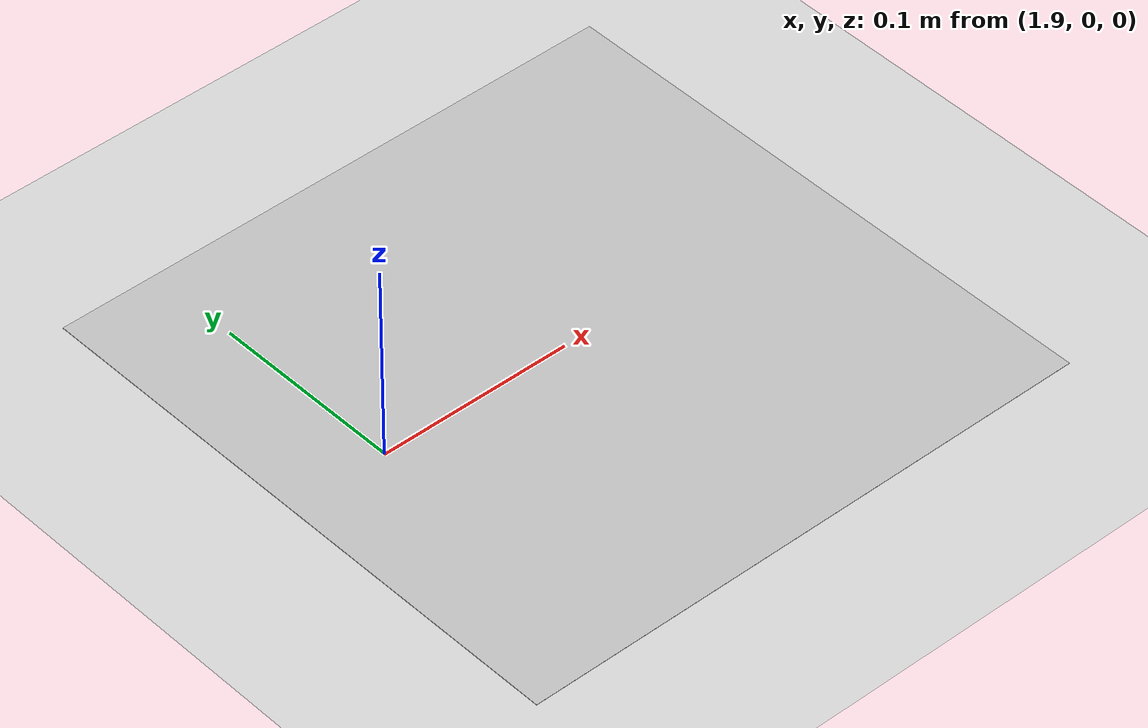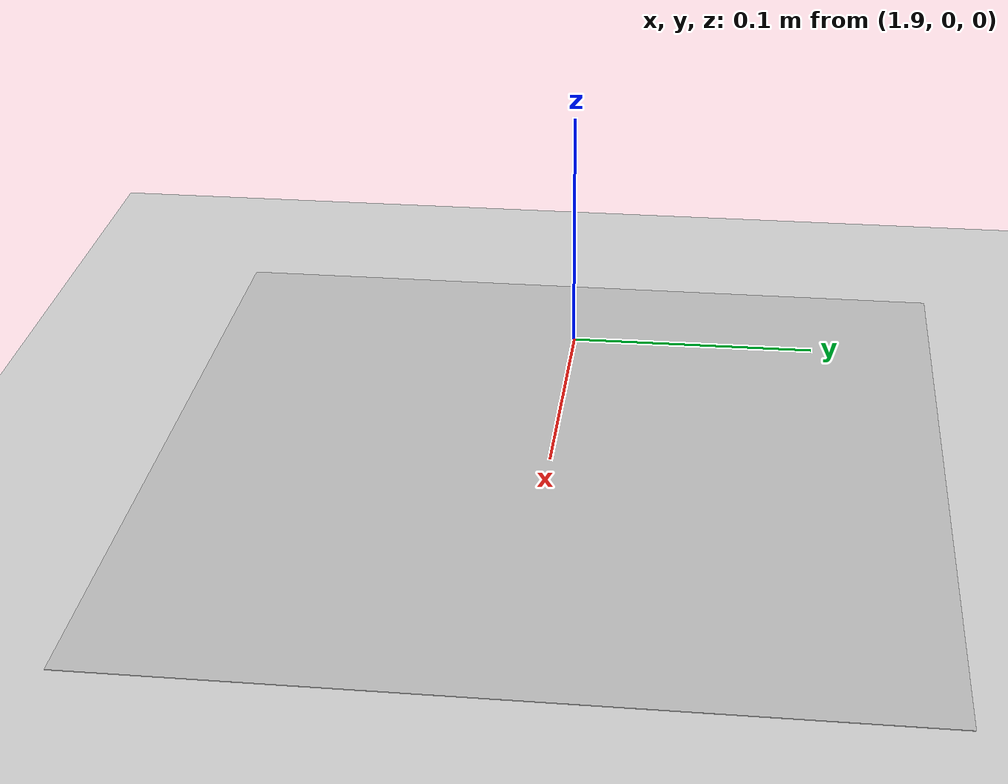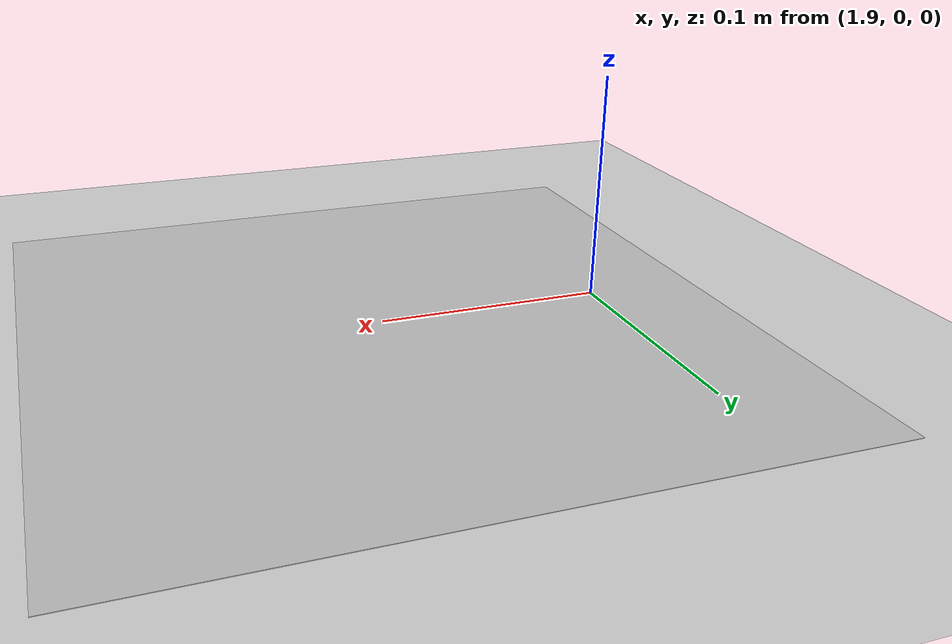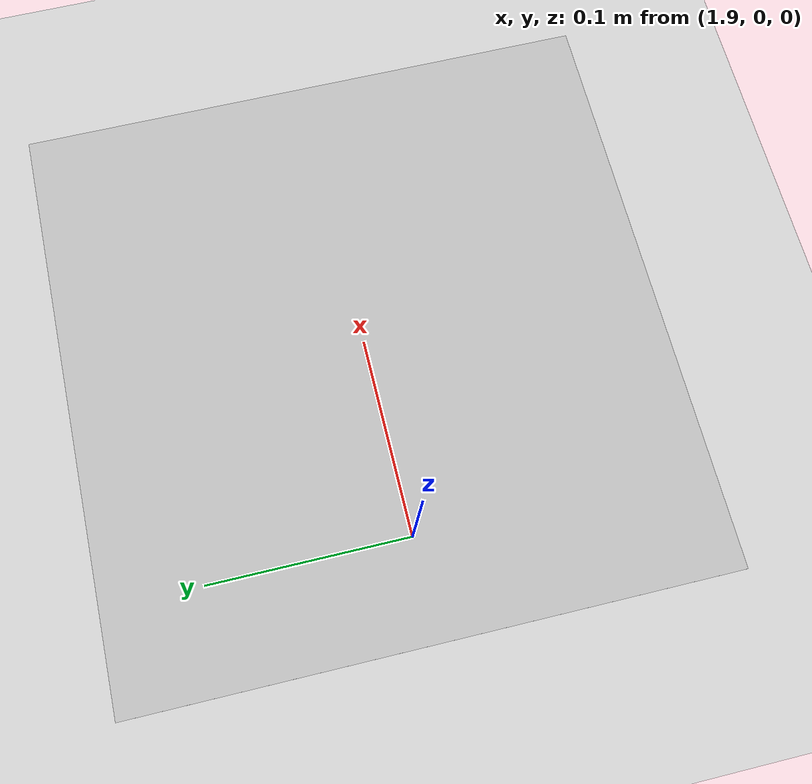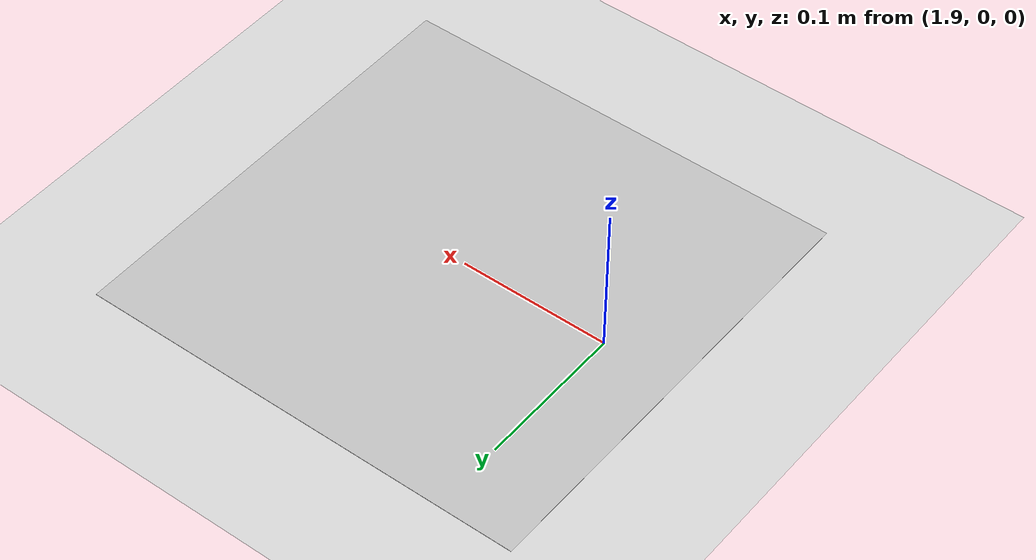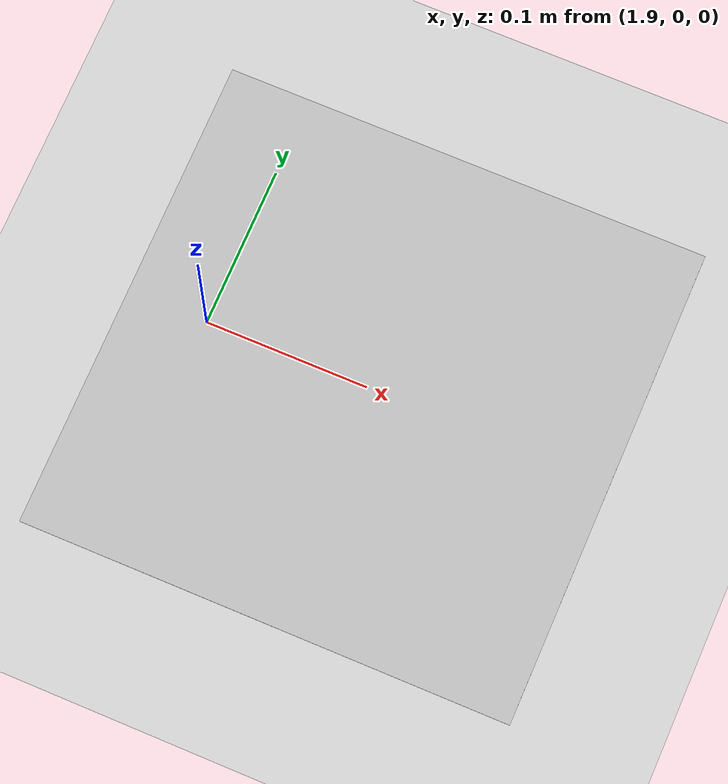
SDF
<sdf version='1.7'>
  <world name='april'>

    <light name='sun' type='directional'>
      <cast_shadows>0</cast_shadows>
      <pose>0 0 10 0 -0 0</pose>
      <diffuse>0.8 0.8 0.8 1</diffuse>
      <specular>0.2 0.2 0.2 1</specular>
      <attenuation>
        <range>1000</range>
        <constant>0.9</constant>
        <linear>0.01</linear>
        <quadratic>0.001</quadratic>
      </attenuation>
      <direction>-0.5 0.1 -0.9</direction>
      <spot>
        <inner_angle>0</inner_angle>
        <outer_angle>0</outer_angle>
        <falloff>0</falloff>
      </spot>
    </light>

    <model name='ground_plane'>
      <static>1</static>
      <link name='link'>

        <collision name='collision'>
          <geometry>
            <plane>
              <normal>0 0 1</normal>
              <size>100 100</size>
            </plane>
          </geometry>

          <surface>
            <contact>
              <collide_bitmask>65535</collide_bitmask>
              <ode/>
            </contact>

            <friction>
              <ode>
                <mu>1.2</mu>
                <mu2>1.2</mu2>
              </ode>

              <torsional>
                <ode>
                  <coefficient>0.5</coefficient>
                  <use_patch_radius>1</use_patch_radius>
                  <patch_radius>0.02</patch_radius>
                  <surface_radius>0.0</surface_radius>
                </ode>
              </torsional>
            </friction>

            <bounce/>
          </surface>

          <max_contacts>50</max_contacts>
        </collision>

        <visual name='visual'>
          <cast_shadows>0</cast_shadows>
          <geometry>
            <plane>
              <normal>0 0 1</normal>
              <size>100 100</size>
            </plane>
          </geometry>
          <material>
            <script>
              <uri>file://media/materials/scripts/gazebo.material</uri>
              <name>Gazebo/Grey</name>
            </script>
          </material>
        </visual>

        <self_collide>0</self_collide>
        <enable_wind>0</enable_wind>
        <kinematic>0</kinematic>
      </link>
    </model>

    <gravity>0 0 -9.8</gravity>
    <magnetic_field>6e-06 2.3e-05 -4.2e-05</magnetic_field>
    <atmosphere type='adiabatic'/>

    <physics type='ode'>
      <max_step_size>0.002</max_step_size>
      <real_time_factor>1</real_time_factor>
      <real_time_update_rate>500</real_time_update_rate>
    </physics>

    <scene>
      <ambient>0.5 0.5 0.5 1</ambient>
      <background>0.7 0.7 0.7 1</background>
      <shadows>0</shadows>
    </scene>

    <audio>
      <device>default</device>
    </audio>

    <wind/>

    <spherical_coordinates>
      <surface_model>EARTH_WGS84</surface_model>
      <latitude_deg>0</latitude_deg>
      <longitude_deg>0</longitude_deg>
      <elevation>0</elevation>
      <heading_deg>0</heading_deg>
    </spherical_coordinates>

    <model name="apriltag_0">
      <static>true</static>
      <pose>2 0 0 0 0 0</pose>
      <link name="link">
        <visual name="visual">
          <cast_shadows>0</cast_shadows>
          <geometry>
            <plane>
              <normal>0 0 1</normal>
              <size>0.3 0.3</size>
            </plane>
          </geometry>
          <material>
            <script>
              <uri>model://apriltag_model/materials/scripts/apriltag.material</uri>
              <uri>model://apriltag_model/materials/textures/</uri>
              <name>AprilTag/tag0</name>
            </script>
          </material>
        </visual>

        <collision name="collision">
          <geometry>
            <plane>
              <normal>0 0 1</normal>
              <size>0.3 0.3</size>
            </plane>
          </geometry>
        </collision>
      </link>
    </model>

    <gui fullscreen='0'>
      <camera name='user_camera'>
        <pose>4.9971 -5.0029 2 0 0.275643 2.35619</pose>
        <view_controller>orbit</view_controller>
        <projection_type>perspective</projection_type>
      </camera>
    </gui>

  </world>
</sdf>
